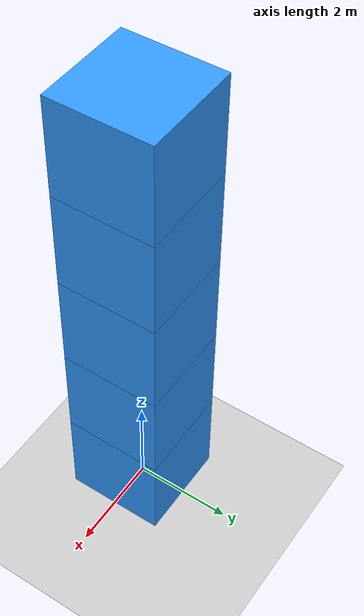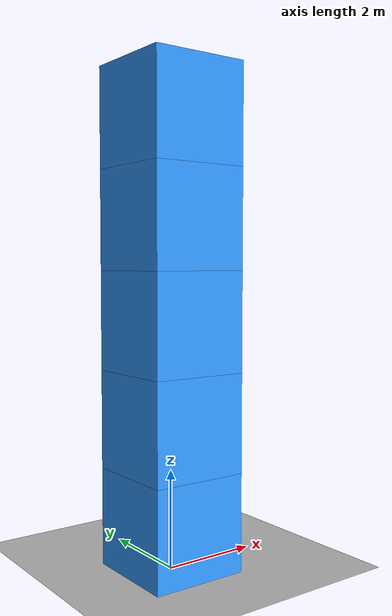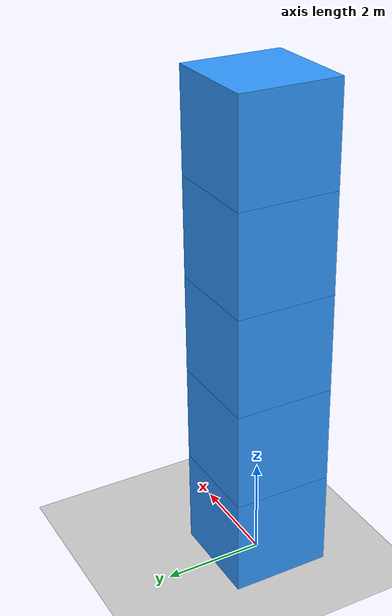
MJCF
<mujoco>
  <option gravity="0 0 -9.81" timestep="0.01" solver="Newton"/>
  <worldbody>
    <camera pos="-15.568 -13.975 25.920" xyaxes="0.668 -0.744 0.000 0.526 0.472 0.707"/>
    <geom type="plane" size="5 5 5" rgba="0.8 0.8 0.8 1"/>
    <body pos="0 0 1">
      <freejoint/>
      <geom type="box" size="1 1 1" rgba="0.2 0.6 1 1"/>
    </body>

    <body pos="0 0 3">
      <freejoint/>
      <geom type="box" size="1 1 1" rgba="0.2 0.6 1 1"/>
    </body>

    <body pos="0 0 5">
      <freejoint/>
      <geom type="box" size="1 1 1" rgba="0.2 0.6 1 1"/>
    </body>

   <body pos="0 0 7">
      <freejoint/>
      <geom type="box" size="1 1 1" rgba="0.2 0.6 1 1"/>
    </body>

   <body pos="0 0 9">
      <freejoint/>
      <geom type="box" size="1 1 1" rgba="0.2 0.6 1 1"/>
    </body>
  </worldbody>

</mujoco>
